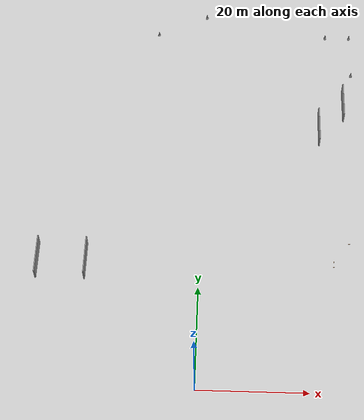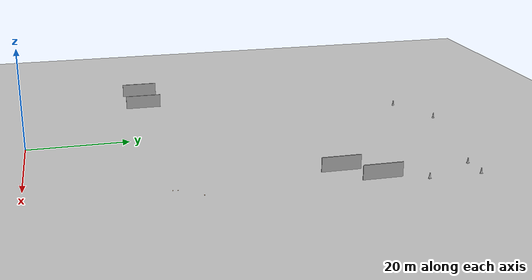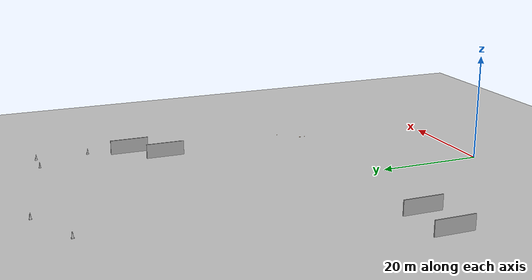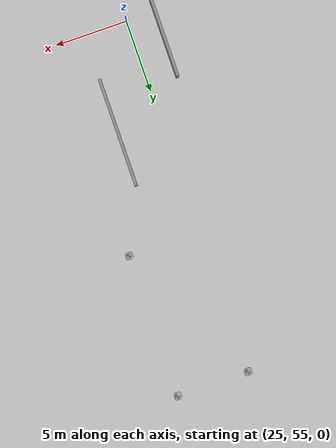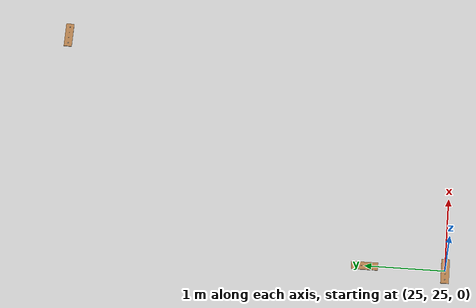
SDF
<sdf version="1.5">
 <world name="default">
  <include><uri>model://ground_plane</uri><size>200 200</size></include>
  <include><uri>model://sun</uri></include>
  <include><uri>model://wooden_board</uri><name>b1_0</name><pose>25 25.0 0 0 0 1.57</pose></include>
  <include><uri>model://wooden_board</uri><name>b1_1</name><pose>25 26.0 0 0 0 0</pose></include>
  <include><uri>model://wooden_board</uri><name>wb2</name><pose>28 30.0 0 0 0 1.57</pose></include>
  <include><uri>model://grey_wall</uri><name>w2</name><pose>23 56.0 0 0 0 1.57</pose></include>
  <include><uri>model://grey_wall</uri><name>w5</name><pose>28 62.0 0 0 0 1.57</pose></include>
  <include><uri>model://grey_wall</uri><name>w8</name><pose>-21 25.0 0 0 0 1.57</pose></include>
  <include><uri>model://grey_wall</uri><name>w11</name><pose>-30 25.0 0 0 0 1.57</pose></include>
  <include><uri>model://construction_cone</uri><name>c1</name><pose>30 70 0 0 0 0</pose></include>
  <include><uri>model://construction_cone</uri><name>c2</name><pose>30 80 0 0 0 0</pose></include>
  <include><uri>model://construction_cone</uri><name>c3</name><pose>25 80 0 0 0 0</pose></include>
  <include><uri>model://construction_cone</uri><name>c4</name><pose>0 85 0 0 0 0</pose></include>
  <include><uri>model://construction_cone</uri><name>c5</name><pose>-10 80 0 0 0 0</pose></include>
 </world>
</sdf>

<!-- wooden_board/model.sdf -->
<sdf version="1.5">
  <model name="wooden_board">
    <link name="base">

      <pose>0 0 0.00523 0 0 0</pose>
      <inertial>
        <mass>0.2765</mass>
        <inertia>
          <ixx>0.0025148009472833336</ixx>
          <ixy>0</ixy>
          <ixz>0</ixz>
          <iyy>0.00024037001228333334</iyy>
          <iyz>0</iyz>
          <izz>0.002750128908333333</izz>
        </inertia>
      </inertial>

      <collision name="collision">
        <geometry>
          <box>
            <size>0.1016 0.3302 0.01046</size>
          </box>
        </geometry>
        <surface>
          <contact>
            <!-- Red Pine coefficients for longitudinal axis of the wood
                 according to:
                 http://www.fpl.fs.fed.us/documnts/fplgtr/fplgtr113/ch04.pdf -->
            <poissons_ratio>0.347</poissons_ratio>
            <elastic_modulus>8.8e+09</elastic_modulus>
            <ode>
              <kp>100000</kp>
              <kd>100</kd>
              <max_vel>100.0</max_vel>
              <min_depth>0.001</min_depth>
            </ode>
          </contact>
          <friction>
            <torsional>
              <coefficient>1.0</coefficient>
              <use_patch_radius>0</use_patch_radius>
              <surface_radius>0.01</surface_radius>
            </torsional>
          </friction>
        </surface>
      </collision>

      <visual name="visual">
        <geometry>
          <box>
            <size>0.1016 0.3302 0.01046</size>
          </box>
        </geometry>
        <material>
          <script>
            <uri>file://media/materials/scripts/gazebo.material</uri>
            <name>Gazebo/Wood</name>
          </script>
        </material>
      </visual>

      <visual name='tee_nut_1'>
        <pose>0.0 -0.116 0.0  0 0 0</pose>
        <geometry>
          <cylinder>
            <radius>0.00635</radius>
            <length>0.0105646</length>
          </cylinder>
        </geometry>
        <material>
          <script>
            <uri>file://media/materials/scripts/gazebo.material</uri>
            <name>Gazebo/Grey</name>
          </script>
        </material>
      </visual>

      <visual name='tee_nut_2'>
        <pose>0.0 -0.038 0.0  0 0 0</pose>
        <geometry>
          <cylinder>
            <radius>0.00635</radius>
            <length>0.0105646</length>
          </cylinder>
        </geometry>
        <material>
          <script>
            <uri>file://media/materials/scripts/gazebo.material</uri>
            <name>Gazebo/Grey</name>
          </script>
        </material>
      </visual>

      <visual name='tee_nut_3'>
        <pose>0.0 0.038 0.0  0 0 0</pose>
        <geometry>
          <cylinder>
            <radius>0.00635</radius>
            <length>0.0105646</length>
          </cylinder>
        </geometry>
        <material>
          <script>
            <uri>file://media/materials/scripts/gazebo.material</uri>
            <name>Gazebo/Grey</name>
          </script>
        </material>
      </visual>

      <visual name='tee_nut_4'>
        <pose>0.0 0.116 0.0  0 0 0</pose>
        <geometry>
          <cylinder>
            <radius>0.00635</radius>
            <length>0.0105646</length>
          </cylinder>
        </geometry>
        <material>
          <script>
            <uri>file://media/materials/scripts/gazebo.material</uri>
            <name>Gazebo/Grey</name>
          </script>
        </material>
      </visual>

    </link>

  </model>
</sdf>

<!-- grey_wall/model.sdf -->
<sdf version="1.5">
  <model name="grey_wall">
    <static>true</static>
    <link name="link">
      <pose>0 0 1.4 0 0 0</pose>
      <collision name="collision">
        <geometry>
          <box>
            <size>7.5 0.2 2.8</size>
          </box>
        </geometry>
      </collision>
      <visual name="visual">
        <cast_shadows>false</cast_shadows>
        <geometry>
          <box>
            <size>7.5 0.2 2.8</size>
          </box>
        </geometry>
        <material>
          <script>
            <uri>model://../model_source/models/grey_wall/materials/scripts</uri>
            <uri>model://../model_source/models/grey_wall/materials/textures</uri>
            <name>vrc/grey_wall</name>
          </script>
        </material>
      </visual>
    </link>
  </model>
</sdf>

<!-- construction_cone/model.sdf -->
<sdf version="1.5">
  <model name="Construction Cone">
    <link name="link">
      <collision name="collision">
        <geometry>
          <mesh>
            <scale>10 10 10</scale>
            <uri>file://isr-testbed/construction_cone/meshes/construction_cone.dae</uri>
          </mesh>
        </geometry>
      </collision>
      <visual name="visual">
        <geometry>
          <mesh>
            <scale>10 10 10</scale>
            <uri>file://isr-testbed/construction_cone/meshes/construction_cone.dae</uri>
          </mesh>
        </geometry>
      </visual>
    </link>
  </model>
</sdf>
